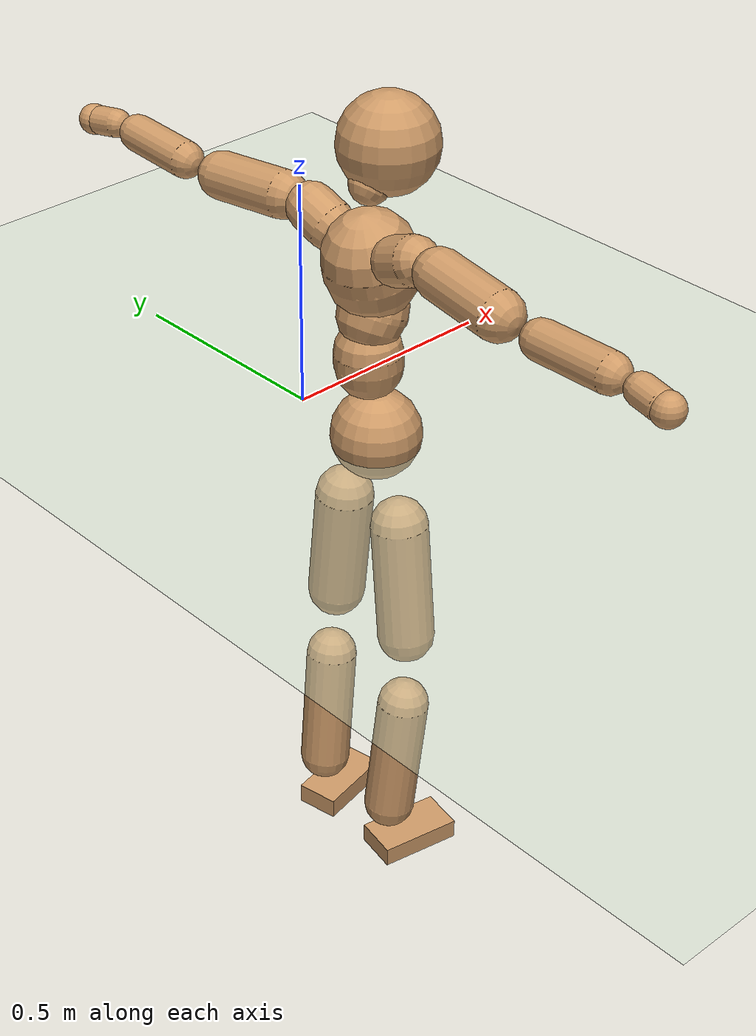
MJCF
<mujoco model="humanoid">
  <compiler coordinate="local" angle="radian"/>
  <default>
    <joint damping="0.0" armature="0.01" stiffness="0.0" limited="true"/>
    <geom conaffinity="1" condim="3" contype="7" margin="0.001" rgba="0.8 0.6 .4 1"/>
  </default>
  <asset>
    <texture type="skybox" builtin="gradient" rgb1=".4 .5 .6" rgb2="0 0 0" width="100" height="100"/>
    <texture builtin="flat" height="1278" mark="cross" markrgb="1 1 1" name="texgeom" random="0.01" rgb1="0.8 0.6 0.4" rgb2="0.8 0.6 0.4" type="cube" width="127"/>
    <texture builtin="checker" height="100" name="texplane" rgb1="0 0 0" rgb2="0.8 0.8 0.8" type="2d" width="100"/>
    <material name="MatPlane" reflectance="0.5" shininess="1" specular="1" texrepeat="60 60" texture="texplane"/>
    <material name="geom" texture="texgeom" texuniform="true"/>
  </asset>
  <worldbody>
    <light cutoff="100" diffuse="1 1 1" dir="-0 0 -1.3" directional="true" exponent="1" pos="0 0 1.3" specular=".1 .1 .1"/>
    <geom conaffinity="1" condim="3" name="floor" pos="0 0 0" rgba="0.8 0.9 0.8 1" size="100 100 .2" type="plane" material="MatPlane"/>
    <body name="Pelvis" pos="0.0002 -0.2284 0.0253">
      <freejoint name="Pelvis"/>
      <geom type="sphere" contype="1" conaffinity="1" density="500" size="0.0964" pos="0.0000 0.0000 0.0000" name="Pelvis"/>
      <body name="L_Hip" pos="-0.0114 0.0742 -0.0981">
        <joint name="L_Hip_x" type="hinge" pos="0 0 0" axis="1 0 0" stiffness="800" damping="80" armature="0.02" range="-180.0000 180.0000"/>
        <joint name="L_Hip_y" type="hinge" pos="0 0 0" axis="0 1 0" stiffness="800" damping="80" armature="0.02" range="-180.0000 180.0000"/>
        <joint name="L_Hip_z" type="hinge" pos="0 0 0" axis="0 0 1" stiffness="800" damping="80" armature="0.02" range="-180.0000 180.0000"/>
        <geom type="capsule" contype="1" conaffinity="1" density="500" fromto="-0.0006 0.0083 -0.0866 -0.0023 0.0334 -0.3462" size="0.0624" name="L_Hip"/>
        <body name="L_Knee" pos="-0.0029 0.0417 -0.4328">
          <joint name="L_Knee_x" type="hinge" pos="0 0 0" axis="1 0 0" stiffness="800" damping="80" armature="0.02" range="-180.0000 180.0000"/>
          <joint name="L_Knee_y" type="hinge" pos="0 0 0" axis="0 1 0" stiffness="800" damping="80" armature="0.02" range="-180.0000 180.0000"/>
          <joint name="L_Knee_z" type="hinge" pos="0 0 0" axis="0 0 1" stiffness="800" damping="80" armature="0.02" range="-180.0000 180.0000"/>
          <geom type="capsule" contype="1" conaffinity="1" density="500" fromto="-0.0097 -0.0027 -0.0922 -0.0387 -0.0108 -0.3688" size="0.0555" name="L_Knee"/>
          <body name="L_Ankle" pos="-0.0483 -0.0135 -0.461">
            <joint name="L_Ankle_x" type="hinge" pos="0 0 0" axis="1 0 0" stiffness="800" damping="80" armature="0.02" range="-180.0000 180.0000"/>
            <joint name="L_Ankle_y" type="hinge" pos="0 0 0" axis="0 1 0" stiffness="800" damping="80" armature="0.02" range="-180.0000 180.0000"/>
            <joint name="L_Ankle_z" type="hinge" pos="0 0 0" axis="0 0 1" stiffness="800" damping="80" armature="0.02" range="-180.0000 180.0000"/>
            <geom type="box" contype="1" conaffinity="1" density="500" pos="0.0638 0.0126 -0.0323" size="0.0883 0.0472 0.0232" quat="0.9952 0.0000 0.0000 0.0974" name="L_Ankle"/>
            <body name="L_Toe" pos="0.1277 0.0252 -0.0646">
              <joint name="L_Toe_x" type="hinge" pos="0 0 0" axis="1 0 0" stiffness="500" damping="50" armature="0.02" range="-180.0000 180.0000"/>
              <joint name="L_Toe_y" type="hinge" pos="0 0 0" axis="0 1 0" stiffness="500" damping="50" armature="0.02" range="-180.0000 180.0000"/>
              <joint name="L_Toe_z" type="hinge" pos="0 0 0" axis="0 0 1" stiffness="500" damping="50" armature="0.02" range="-180.0000 180.0000"/>
              <geom type="box" contype="1" conaffinity="1" density="500" pos="0.0000 0.0000 0.0323" size="0.0009 0.0024 0.0012" quat="0.9947 0.0000 0.0000 0.1033" name="L_Toe"/>
            </body>
          </body>
        </body>
      </body>
      <body name="R_Hip" pos="-0.0067 -0.0707 -0.0969">
        <joint name="R_Hip_x" type="hinge" pos="0 0 0" axis="1 0 0" stiffness="800" damping="80" armature="0.02" range="-180.0000 180.0000"/>
        <joint name="R_Hip_y" type="hinge" pos="0 0 0" axis="0 1 0" stiffness="800" damping="80" armature="0.02" range="-180.0000 180.0000"/>
        <joint name="R_Hip_z" type="hinge" pos="0 0 0" axis="0 0 1" stiffness="800" damping="80" armature="0.02" range="-180.0000 180.0000"/>
        <geom type="capsule" contype="1" conaffinity="1" density="500" fromto="-0.0012 -0.0099 -0.0884 -0.0048 -0.0394 -0.3536" size="0.0614" name="R_Hip"/>
        <body name="R_Knee" pos="-0.006 -0.0493 -0.4419">
          <joint name="R_Knee_x" type="hinge" pos="0 0 0" axis="1 0 0" stiffness="800" damping="80" armature="0.02" range="-180.0000 180.0000"/>
          <joint name="R_Knee_y" type="hinge" pos="0 0 0" axis="0 1 0" stiffness="800" damping="80" armature="0.02" range="-180.0000 180.0000"/>
          <joint name="R_Knee_z" type="hinge" pos="0 0 0" axis="0 0 1" stiffness="800" damping="80" armature="0.02" range="-180.0000 180.0000"/>
          <geom type="capsule" contype="1" conaffinity="1" density="500" fromto="-0.0091 0.0035 -0.0923 -0.0366 0.0140 -0.3694" size="0.0559" name="R_Knee"/>
          <body name="R_Ankle" pos="-0.0457 0.0176 -0.4617">
            <joint name="R_Ankle_x" type="hinge" pos="0 0 0" axis="1 0 0" stiffness="800" damping="80" armature="0.02" range="-180.0000 180.0000"/>
            <joint name="R_Ankle_y" type="hinge" pos="0 0 0" axis="0 1 0" stiffness="800" damping="80" armature="0.02" range="-180.0000 180.0000"/>
            <joint name="R_Ankle_z" type="hinge" pos="0 0 0" axis="0 0 1" stiffness="800" damping="80" armature="0.02" range="-180.0000 180.0000"/>
            <geom type="box" contype="1" conaffinity="1" density="500" pos="0.0658 -0.0123 -0.0274" size="0.0911 0.0492 0.0224" quat="0.9957 0.0000 0.0000 -0.0922" name="R_Ankle"/>
            <body name="R_Toe" pos="0.1316 -0.0246 -0.0548">
              <joint name="R_Toe_x" type="hinge" pos="0 0 0" axis="1 0 0" stiffness="500" damping="50" armature="0.02" range="-180.0000 180.0000"/>
              <joint name="R_Toe_y" type="hinge" pos="0 0 0" axis="0 1 0" stiffness="500" damping="50" armature="0.02" range="-180.0000 180.0000"/>
              <joint name="R_Toe_z" type="hinge" pos="0 0 0" axis="0 0 1" stiffness="500" damping="50" armature="0.02" range="-180.0000 180.0000"/>
              <geom type="box" contype="1" conaffinity="1" density="500" pos="0.0000 0.0000 0.0307" size="0.0009 0.0024 0.0013" quat="0.9965 0.0000 0.0000 -0.0837" name="R_Toe"/>
            </body>
          </body>
        </body>
      </body>
      <body name="Torso" pos="-0.0226 -0.0036 0.1133">
        <joint name="Torso_x" type="hinge" pos="0 0 0" axis="1 0 0" stiffness="1000" damping="100" armature="0.02" range="-180.0000 180.0000"/>
        <joint name="Torso_y" type="hinge" pos="0 0 0" axis="0 1 0" stiffness="1000" damping="100" armature="0.02" range="-180.0000 180.0000"/>
        <joint name="Torso_z" type="hinge" pos="0 0 0" axis="0 0 1" stiffness="1000" damping="100" armature="0.02" range="-180.0000 180.0000"/>
        <geom type="capsule" contype="1" conaffinity="1" density="500" fromto="-0.0014 0.0029 0.0872 -0.0010 0.0019 0.0581" size="0.0715" name="Torso"/>
        <body name="Spine" pos="-0.0024 0.0048 0.1454">
          <joint name="Spine_x" type="hinge" pos="0 0 0" axis="1 0 0" stiffness="1000" damping="100" armature="0.02" range="-180.0000 180.0000"/>
          <joint name="Spine_y" type="hinge" pos="0 0 0" axis="0 1 0" stiffness="1000" damping="100" armature="0.02" range="-180.0000 180.0000"/>
          <joint name="Spine_z" type="hinge" pos="0 0 0" axis="0 0 1" stiffness="1000" damping="100" armature="0.02" range="-180.0000 180.0000"/>
          <geom type="capsule" contype="1" conaffinity="1" density="500" fromto="0.0169 0.0005 0.0334 0.0113 0.0003 0.0222" size="0.0723" name="Spine"/>
          <body name="Chest" pos="0.0282 0.0008 0.0556">
            <joint name="Chest_x" type="hinge" pos="0 0 0" axis="1 0 0" stiffness="1000" damping="100" armature="0.02" range="-180.0000 180.0000"/>
            <joint name="Chest_y" type="hinge" pos="0 0 0" axis="0 1 0" stiffness="1000" damping="100" armature="0.02" range="-180.0000 180.0000"/>
            <joint name="Chest_z" type="hinge" pos="0 0 0" axis="0 0 1" stiffness="1000" damping="100" armature="0.02" range="-180.0000 180.0000"/>
            <geom type="capsule" contype="1" conaffinity="1" density="500" fromto="-0.0242 -0.0012 0.0967 -0.0162 -0.0008 0.0644" size="0.098" name="Chest"/>
            <body name="Neck" pos="-0.0392 -0.0038 0.2349">
              <joint name="Neck_x" type="hinge" pos="0 0 0" axis="1 0 0" stiffness="500" damping="50" armature="0.02" range="-180.0000 180.0000"/>
              <joint name="Neck_y" type="hinge" pos="0 0 0" axis="0 1 0" stiffness="500" damping="50" armature="0.02" range="-180.0000 180.0000"/>
              <joint name="Neck_z" type="hinge" pos="0 0 0" axis="0 0 1" stiffness="500" damping="50" armature="0.02" range="-180.0000 180.0000"/>
              <geom type="capsule" contype="1" conaffinity="1" density="500" fromto="0.0130 0.0013 0.0165 0.0519 0.0052 0.0660" size="0.0429" name="Neck"/>
              <body name="Head" pos="0.0649 0.0065 0.0824">
                <joint name="Head_x" type="hinge" pos="0 0 0" axis="1 0 0" stiffness="500" damping="50" armature="0.02" range="-180.0000 180.0000"/>
                <joint name="Head_y" type="hinge" pos="0 0 0" axis="0 1 0" stiffness="500" damping="50" armature="0.02" range="-180.0000 180.0000"/>
                <joint name="Head_z" type="hinge" pos="0 0 0" axis="0 0 1" stiffness="500" damping="50" armature="0.02" range="-180.0000 180.0000"/>
                <geom type="sphere" contype="1" conaffinity="1" density="500" size="0.1033" pos="0.0000 0.0000 0.0000" name="Head"/>
              </body>
            </body>
            <body name="L_Thorax" pos="-0.0379 0.078 0.1255">
              <joint name="L_Thorax_x" type="hinge" pos="0 0 0" axis="1 0 0" stiffness="500" damping="50" armature="0.02" range="-180.0000 180.0000"/>
              <joint name="L_Thorax_y" type="hinge" pos="0 0 0" axis="0 1 0" stiffness="500" damping="50" armature="0.02" range="-180.0000 180.0000"/>
              <joint name="L_Thorax_z" type="hinge" pos="0 0 0" axis="0 0 1" stiffness="500" damping="50" armature="0.02" range="-180.0000 180.0000"/>
              <geom type="capsule" contype="1" conaffinity="1" density="500" fromto="-0.0013 0.0171 0.0071 -0.0050 0.0686 0.0285" size="0.0519" name="L_Thorax"/>
              <body name="L_Shoulder" pos="-0.0063 0.0857 0.0356">
                <joint name="L_Shoulder_x" type="hinge" pos="0 0 0" axis="1 0 0" stiffness="500" damping="50" armature="0.02" range="-720.0000 720.0000"/>
                <joint name="L_Shoulder_y" type="hinge" pos="0 0 0" axis="0 1 0" stiffness="500" damping="50" armature="0.02" range="-720.0000 720.0000"/>
                <joint name="L_Shoulder_z" type="hinge" pos="0 0 0" axis="0 0 1" stiffness="500" damping="50" armature="0.02" range="-720.0000 720.0000"/>
                <geom type="capsule" contype="1" conaffinity="1" density="500" fromto="-0.0060 0.0568 -0.0040 -0.0238 0.2270 -0.0159" size="0.05" name="L_Shoulder"/>
                <body name="L_Elbow" pos="-0.0298 0.2838 -0.0199">
                  <joint name="L_Elbow_x" type="hinge" pos="0 0 0" axis="1 0 0" stiffness="500" damping="50" armature="0.02" range="-720.0000 720.0000"/>
                  <joint name="L_Elbow_y" type="hinge" pos="0 0 0" axis="0 1 0" stiffness="500" damping="50" armature="0.02" range="-720.0000 720.0000"/>
                  <joint name="L_Elbow_z" type="hinge" pos="0 0 0" axis="0 0 1" stiffness="500" damping="50" armature="0.02" range="-720.0000 720.0000"/>
                  <geom type="capsule" contype="1" conaffinity="1" density="500" fromto="-0.0002 0.0529 0.0024 -0.0007 0.2115 0.0095" size="0.0393" name="L_Elbow"/>
                  <body name="L_Wrist" pos="-0.0009 0.2643 0.0119">
                    <joint name="L_Wrist_x" type="hinge" pos="0 0 0" axis="1 0 0" stiffness="300" damping="30" armature="0.02" range="-180.0000 180.0000"/>
                    <joint name="L_Wrist_y" type="hinge" pos="0 0 0" axis="0 1 0" stiffness="300" damping="30" armature="0.02" range="-180.0000 180.0000"/>
                    <joint name="L_Wrist_z" type="hinge" pos="0 0 0" axis="0 0 1" stiffness="300" damping="30" armature="0.02" range="-180.0000 180.0000"/>
                    <geom type="capsule" contype="1" conaffinity="1" density="500" fromto="-0.0028 0.0164 -0.0020 -0.0110 0.0656 -0.0082" size="0.0307" name="L_Wrist"/>
                    <body name="L_Hand" pos="-0.0138 0.082 -0.0102">
                      <joint name="L_Hand_x" type="hinge" pos="0 0 0" axis="1 0 0" stiffness="300" damping="30" armature="0.02" range="-180.0000 180.0000"/>
                      <joint name="L_Hand_y" type="hinge" pos="0 0 0" axis="0 1 0" stiffness="300" damping="30" armature="0.02" range="-180.0000 180.0000"/>
                      <joint name="L_Hand_z" type="hinge" pos="0 0 0" axis="0 0 1" stiffness="300" damping="30" armature="0.02" range="-180.0000 180.0000"/>
                      <geom type="sphere" contype="1" conaffinity="1" density="500" size="0.0330" pos="0.0000 0.0000 0.0000" name="L_Hand"/>
                    </body>
                  </body>
                </body>
              </body>
            </body>
            <body name="R_Thorax" pos="-0.0441 -0.0802 0.1229">
              <joint name="R_Thorax_x" type="hinge" pos="0 0 0" axis="1 0 0" stiffness="500" damping="50" armature="0.02" range="-180.0000 180.0000"/>
              <joint name="R_Thorax_y" type="hinge" pos="0 0 0" axis="0 1 0" stiffness="500" damping="50" armature="0.02" range="-180.0000 180.0000"/>
              <joint name="R_Thorax_z" type="hinge" pos="0 0 0" axis="0 0 1" stiffness="500" damping="50" armature="0.02" range="-180.0000 180.0000"/>
              <geom type="capsule" contype="1" conaffinity="1" density="500" fromto="-0.0016 -0.0178 0.0076 -0.0065 -0.0713 0.0303" size="0.0506" name="R_Thorax"/>
              <body name="R_Shoulder" pos="-0.0082 -0.0891 0.0379">
                <joint name="R_Shoulder_x" type="hinge" pos="0 0 0" axis="1 0 0" stiffness="500" damping="50" armature="0.02" range="-720.0000 720.0000"/>
                <joint name="R_Shoulder_y" type="hinge" pos="0 0 0" axis="0 1 0" stiffness="500" damping="50" armature="0.02" range="-720.0000 720.0000"/>
                <joint name="R_Shoulder_z" type="hinge" pos="0 0 0" axis="0 0 1" stiffness="500" damping="50" armature="0.02" range="-720.0000 720.0000"/>
                <geom type="capsule" contype="1" conaffinity="1" density="500" fromto="-0.0049 -0.0553 -0.0041 -0.0197 -0.2213 -0.0164" size="0.0519" name="R_Shoulder"/>
                <body name="R_Elbow" pos="-0.0246 -0.2766 -0.0205">
                  <joint name="R_Elbow_x" type="hinge" pos="0 0 0" axis="1 0 0" stiffness="500" damping="50" armature="0.02" range="-720.0000 720.0000"/>
                  <joint name="R_Elbow_y" type="hinge" pos="0 0 0" axis="0 1 0" stiffness="500" damping="50" armature="0.02" range="-720.0000 720.0000"/>
                  <joint name="R_Elbow_z" type="hinge" pos="0 0 0" axis="0 0 1" stiffness="500" damping="50" armature="0.02" range="-720.0000 720.0000"/>
                  <geom type="capsule" contype="1" conaffinity="1" density="500" fromto="-0.0012 -0.0549 0.0019 -0.0049 -0.2196 0.0077" size="0.0399" name="R_Elbow"/>
                  <body name="R_Wrist" pos="-0.0061 -0.2745 0.0097">
                    <joint name="R_Wrist_x" type="hinge" pos="0 0 0" axis="1 0 0" stiffness="300" damping="30" armature="0.02" range="-180.0000 180.0000"/>
                    <joint name="R_Wrist_y" type="hinge" pos="0 0 0" axis="0 1 0" stiffness="300" damping="30" armature="0.02" range="-180.0000 180.0000"/>
                    <joint name="R_Wrist_z" type="hinge" pos="0 0 0" axis="0 0 1" stiffness="300" damping="30" armature="0.02" range="-180.0000 180.0000"/>
                    <geom type="capsule" contype="1" conaffinity="1" density="500" fromto="-0.0021 -0.0167 -0.0015 -0.0085 -0.0666 -0.0060" size="0.0316" name="R_Wrist"/>
                    <body name="R_Hand" pos="-0.0106 -0.0833 -0.0075">
                      <joint name="R_Hand_x" type="hinge" pos="0 0 0" axis="1 0 0" stiffness="300" damping="30" armature="0.02" range="-180.0000 180.0000"/>
                      <joint name="R_Hand_y" type="hinge" pos="0 0 0" axis="0 1 0" stiffness="300" damping="30" armature="0.02" range="-180.0000 180.0000"/>
                      <joint name="R_Hand_z" type="hinge" pos="0 0 0" axis="0 0 1" stiffness="300" damping="30" armature="0.02" range="-180.0000 180.0000"/>
                      <geom type="sphere" contype="1" conaffinity="1" density="500" size="0.0333" pos="0.0000 0.0000 0.0000" name="R_Hand"/>
                    </body>
                  </body>
                </body>
              </body>
            </body>
          </body>
        </body>
      </body>
    </body>
  </worldbody>
  <actuator>
    <motor name="L_Hip_x" joint="L_Hip_x" gear="500"/>
    <motor name="L_Hip_y" joint="L_Hip_y" gear="500"/>
    <motor name="L_Hip_z" joint="L_Hip_z" gear="500"/>
    <motor name="L_Knee_x" joint="L_Knee_x" gear="500"/>
    <motor name="L_Knee_y" joint="L_Knee_y" gear="500"/>
    <motor name="L_Knee_z" joint="L_Knee_z" gear="500"/>
    <motor name="L_Ankle_x" joint="L_Ankle_x" gear="500"/>
    <motor name="L_Ankle_y" joint="L_Ankle_y" gear="500"/>
    <motor name="L_Ankle_z" joint="L_Ankle_z" gear="500"/>
    <motor name="L_Toe_x" joint="L_Toe_x" gear="500"/>
    <motor name="L_Toe_y" joint="L_Toe_y" gear="500"/>
    <motor name="L_Toe_z" joint="L_Toe_z" gear="500"/>
    <motor name="R_Hip_x" joint="R_Hip_x" gear="500"/>
    <motor name="R_Hip_y" joint="R_Hip_y" gear="500"/>
    <motor name="R_Hip_z" joint="R_Hip_z" gear="500"/>
    <motor name="R_Knee_x" joint="R_Knee_x" gear="500"/>
    <motor name="R_Knee_y" joint="R_Knee_y" gear="500"/>
    <motor name="R_Knee_z" joint="R_Knee_z" gear="500"/>
    <motor name="R_Ankle_x" joint="R_Ankle_x" gear="500"/>
    <motor name="R_Ankle_y" joint="R_Ankle_y" gear="500"/>
    <motor name="R_Ankle_z" joint="R_Ankle_z" gear="500"/>
    <motor name="R_Toe_x" joint="R_Toe_x" gear="500"/>
    <motor name="R_Toe_y" joint="R_Toe_y" gear="500"/>
    <motor name="R_Toe_z" joint="R_Toe_z" gear="500"/>
    <motor name="Torso_x" joint="Torso_x" gear="500"/>
    <motor name="Torso_y" joint="Torso_y" gear="500"/>
    <motor name="Torso_z" joint="Torso_z" gear="500"/>
    <motor name="Spine_x" joint="Spine_x" gear="500"/>
    <motor name="Spine_y" joint="Spine_y" gear="500"/>
    <motor name="Spine_z" joint="Spine_z" gear="500"/>
    <motor name="Chest_x" joint="Chest_x" gear="500"/>
    <motor name="Chest_y" joint="Chest_y" gear="500"/>
    <motor name="Chest_z" joint="Chest_z" gear="500"/>
    <motor name="Neck_x" joint="Neck_x" gear="500"/>
    <motor name="Neck_y" joint="Neck_y" gear="500"/>
    <motor name="Neck_z" joint="Neck_z" gear="500"/>
    <motor name="Head_x" joint="Head_x" gear="500"/>
    <motor name="Head_y" joint="Head_y" gear="500"/>
    <motor name="Head_z" joint="Head_z" gear="500"/>
    <motor name="L_Thorax_x" joint="L_Thorax_x" gear="500"/>
    <motor name="L_Thorax_y" joint="L_Thorax_y" gear="500"/>
    <motor name="L_Thorax_z" joint="L_Thorax_z" gear="500"/>
    <motor name="L_Shoulder_x" joint="L_Shoulder_x" gear="500"/>
    <motor name="L_Shoulder_y" joint="L_Shoulder_y" gear="500"/>
    <motor name="L_Shoulder_z" joint="L_Shoulder_z" gear="500"/>
    <motor name="L_Elbow_x" joint="L_Elbow_x" gear="500"/>
    <motor name="L_Elbow_y" joint="L_Elbow_y" gear="500"/>
    <motor name="L_Elbow_z" joint="L_Elbow_z" gear="500"/>
    <motor name="L_Wrist_x" joint="L_Wrist_x" gear="500"/>
    <motor name="L_Wrist_y" joint="L_Wrist_y" gear="500"/>
    <motor name="L_Wrist_z" joint="L_Wrist_z" gear="500"/>
    <motor name="L_Hand_x" joint="L_Hand_x" gear="500"/>
    <motor name="L_Hand_y" joint="L_Hand_y" gear="500"/>
    <motor name="L_Hand_z" joint="L_Hand_z" gear="500"/>
    <motor name="R_Thorax_x" joint="R_Thorax_x" gear="500"/>
    <motor name="R_Thorax_y" joint="R_Thorax_y" gear="500"/>
    <motor name="R_Thorax_z" joint="R_Thorax_z" gear="500"/>
    <motor name="R_Shoulder_x" joint="R_Shoulder_x" gear="500"/>
    <motor name="R_Shoulder_y" joint="R_Shoulder_y" gear="500"/>
    <motor name="R_Shoulder_z" joint="R_Shoulder_z" gear="500"/>
    <motor name="R_Elbow_x" joint="R_Elbow_x" gear="500"/>
    <motor name="R_Elbow_y" joint="R_Elbow_y" gear="500"/>
    <motor name="R_Elbow_z" joint="R_Elbow_z" gear="500"/>
    <motor name="R_Wrist_x" joint="R_Wrist_x" gear="500"/>
    <motor name="R_Wrist_y" joint="R_Wrist_y" gear="500"/>
    <motor name="R_Wrist_z" joint="R_Wrist_z" gear="500"/>
    <motor name="R_Hand_x" joint="R_Hand_x" gear="500"/>
    <motor name="R_Hand_y" joint="R_Hand_y" gear="500"/>
    <motor name="R_Hand_z" joint="R_Hand_z" gear="500"/>
  </actuator>
  <contact>
    <exclude body1="Torso" body2="Chest"/>
    <exclude body1="Head" body2="Chest"/>
    <exclude body1="R_Knee" body2="R_Toe"/>
    <exclude body1="R_Knee" body2="L_Ankle"/>
    <exclude body1="R_Knee" body2="L_Toe"/>
    <exclude body1="L_Knee" body2="L_Toe"/>
    <exclude body1="L_Knee" body2="R_Ankle"/>
    <exclude body1="L_Knee" body2="R_Toe"/>
    <exclude body1="L_Shoulder" body2="Chest"/>
    <exclude body1="R_Shoulder" body2="Chest"/>
  </contact>
  <sensor/>
  <size njmax="700" nconmax="700"/>
</mujoco>
